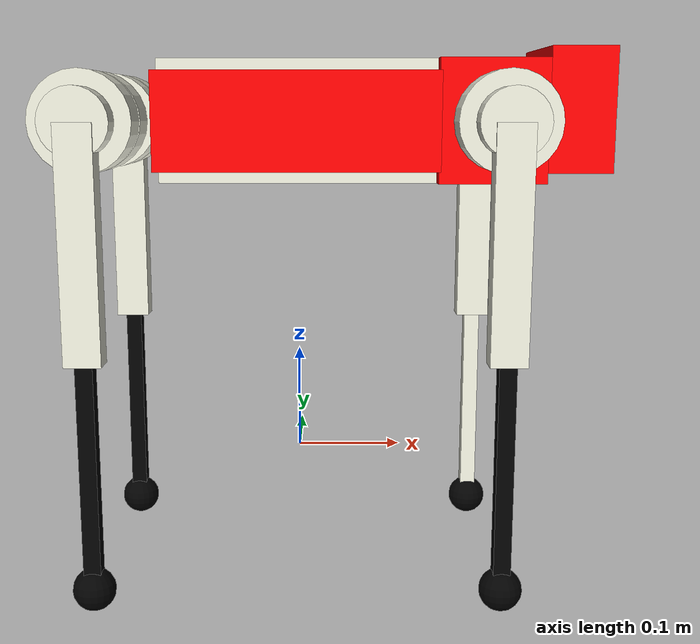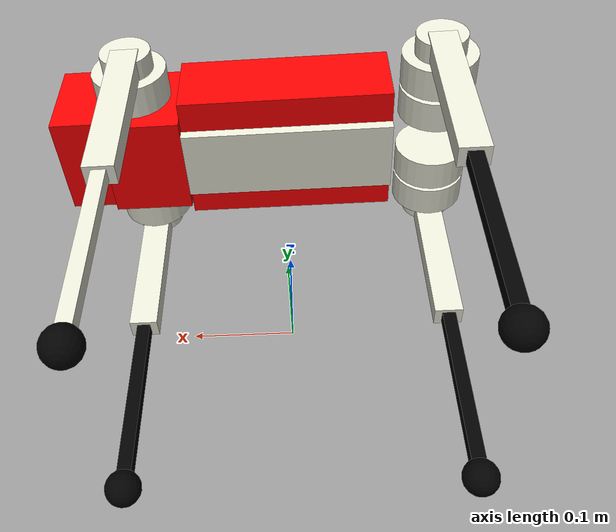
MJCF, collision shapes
<mujoco model="go1_description">
    <compiler angle="radian" meshdir="./meshes/" autolimits="true" />
    <size njmax="500" nconmax="100" />
    <option gravity='0 0 -9.806' iterations='50' solver='Newton' timestep='0.002'
            cone="elliptic" impratio="100"/>
    <default>
        <geom contype="1" conaffinity="1" friction="0.6 0.3 0.3" rgba="0.5 0.6 0.7 1" margin="0.001" group="0"/>

        <motor ctrlrange="-33.5 33.5" ctrllimited="true"/>
        <camera fovy="60"/>
        <joint damping="1.0" armature="0.01" frictionloss="0.2" />

        <default class="actuator_on_hip">
            <position kp="50" ctrlrange="-0.802851 0.802851" forcerange="-23.7 23.7" />
        </default>
        <default class="actuator_on_thigh">
            <position kp="50" ctrlrange="-1.0472 4.18879" forcerange="-23.7 23.7" />
        </default>
        <default class="actuator_on_calf">
            <position kp="50" ctrlrange="-2.69653 -0.916298" forcerange="-35.55 35.55" />
        </default>
        <default class="foot">
          <!-- the 3rd value of solimp is roughly proportional to the deformation
          of the foot when the robot stands on the ground. With this value (0.01)
          the deformation is about 0.44 cm -->
          <geom type="sphere" size="0.02" pos="0 0 -0.213" priority="1" solimp="0.015 1 0.01"
              condim="6" friction="0.8 0.02 0.01" rgba="0 0 0 1"/>
        </default>
    </default>
    <asset>
        <mesh name="trunk" file="trunk.stl" />
        <mesh name="hip" file="hip.stl" />
        <mesh name="thigh_mirror" file="thigh_mirror.stl" />
        <mesh name="calf" file="calf.stl" />
        <mesh name="thigh" file="thigh.stl" />
    </asset>

    <asset>
        <texture type="skybox" builtin="gradient" rgb1="1.0 1.0 1.0" rgb2="1.0 1.0 1.0" width="512" height="512"/>
        <texture name="plane" type="2d" builtin="flat" rgb1="1 1 1" rgb2="1 1 1" width="512" height="512" mark="cross" markrgb="0 0 0"/>
        <material name="plane" reflectance="0.0" texture="plane" texrepeat="3 3" texuniform="true"/>
    </asset>

    <worldbody>
        <body name="trunk" pos="0 0 0.325">
            <inertial pos="0.0116053 0.00442221 0.000106692" quat="0.0111438 0.707126 -0.00935374 0.706938" mass="4.801" diaginertia="0.0447997 0.0366257 0.0162187" />
            <freejoint/>
            <geom type="mesh" contype="0" conaffinity="0" group="1" rgba="0.913725 0.913725 0.847059 1" mesh="trunk" />
            <geom size="0.13 0.04675 0.057" type="box" rgba="0.913725 0.913725 0.847059 1" />
            <geom size="0.0005 0.0005 0.0005" pos="-0.01592 -0.06659 -0.00617" type="box" contype="0" conaffinity="0" group="1" rgba="0.8 0 0 0" />
            <geom size="0.0005 0.0005 0.0005" pos="-0.01592 -0.06659 -0.00617" type="box" rgba="0.8 0 0 0" />
            <geom size="0.13 0.08675 0.045" type="box" rgba="1 0 0 0"/>
            <geom size="0.05 0.06675 0.057" type="box" pos="0.18 0 0" rgba="1 0 0 0"/>
            <geom size="0.03 0.06675 0.057" type="box" pos="0.26 0 0.01" rgba="1 0 0 0"/>
            <site name="imu" pos="0 0 0"/>

            <body name="FR_hip" pos="0.1881 -0.04675 0">
                <inertial pos="-0.00406411 -0.0193463 4.50733e-06" quat="0.467526 0.531662 -0.466259 0.530431" mass="0.679292" diaginertia="0.00131334 0.00122648 0.000728484" />
                <joint name="FR_hip_joint" pos="0 0 0" axis="1 0 0" limited="true" range="-0.802851 0.802851" />
                <geom quat="0 1 0 0" type="mesh" contype="0" conaffinity="0" group="1" rgba="0.913725 0.913725 0.847059 1" mesh="hip" />
                <geom size="0.046 0.02" pos="0 -0.045 0" quat="0.707107 0.707107 0 0" type="cylinder" rgba="0.913725 0.913725 0.847059 0" />
                <geom size="0.031 0.02" pos="0 -0.07 0" quat="0.707107 0.707107 0 0" type="cylinder" rgba="0.913725 0.913725 0.847059 0" />

                <body name="FR_thigh" pos="0 -0.08 0">
                    <inertial pos="-0.003468 0.018947 -0.032736" quat="0.999266 0.00067676 -0.0382978 0.000639813" mass="0.898919" diaginertia="0.00542178 0.00514246 0.000998869" />
                    <joint name="FR_thigh_joint" pos="0 0 0" axis="0 1 0" limited="true" range="-1.0472 4.18879" />
                    <geom type="mesh" contype="0" conaffinity="0" group="1" rgba="0.913725 0.913725 0.847059 1" mesh="thigh_mirror" />
                    <geom size="0.1065 0.01225 0.017" pos="0 0 -0.1065" quat="0.707107 0 0.707107 0" type="box" rgba="0.913725 0.913725 0.847059 0" />
                    <body name="FR_calf" pos="0 0 -0.213">
                        <inertial pos="0.00455603 0.0009473 -0.147239" quat="0.762045 0.00970173 0.0180098 0.647201" mass="0.218015" diaginertia="0.00399678 0.00398122 3.99428e-05" />
                        <joint name="FR_calf_joint" pos="0 0 0" axis="0 1 0" limited="true" range="-2.69653 -0.916298" />
                        <geom type="mesh" contype="0" conaffinity="0" group="1" rgba="0 0 0 1" mesh="calf" />
                        <geom size="0.1065 0.008 0.008" pos="0 0 -0.1065" quat="0.707107 0 0.707107 0" type="box" rgba="0 0 0 0" />
                        <geom size="0.01" pos="0 0 -0.213" contype="0" conaffinity="0" group="1" rgba="0 0 0 1" />
                        <!-- pos should be omitted. However, Object.get_local_position() does not handle
                        the default value from class. So we need to set it here in order to pass some unittests -->
                        <geom class="foot" pos="0 0 -0.213" />
                    </body>
                </body>
            </body>
            <body name="FL_hip" pos="0.1881 0.04675 0">
                <inertial pos="-0.00406411 0.0193463 4.50733e-06" quat="0.531662 0.467526 -0.530431 0.466259" mass="0.679292" diaginertia="0.00131334 0.00122648 0.000728484" />
                <joint name="FL_hip_joint" pos="0 0 0" axis="1 0 0" limited="true" range="-0.802851 0.802851" />
                <geom type="mesh" contype="0" conaffinity="0" group="1" rgba="0.913725 0.913725 0.847059 1" mesh="hip" />
                <geom size="0.046 0.02" pos="0 0.045 0" quat="0.707107 0.707107 0 0" type="cylinder" rgba="0.913725 0.913725 0.847059 0" />
                <geom size="0.031 0.02" pos="0 0.07 0" quat="0.707107 0.707107 0 0" type="cylinder" rgba="0.913725 0.913725 0.847059 0" />

                <body name="FL_thigh" pos="0 0.08 0">
                    <inertial pos="-0.003468 -0.018947 -0.032736" quat="0.999266 -0.00067676 -0.0382978 -0.000639813" mass="0.898919" diaginertia="0.00542178 0.00514246 0.000998869" />
                    <joint name="FL_thigh_joint" pos="0 0 0" axis="0 1 0" limited="true" range="-1.0472 4.18879" />
                    <geom type="mesh" contype="0" conaffinity="0" group="1" rgba="0.913725 0.913725 0.847059 1" mesh="thigh" />
                    <geom size="0.1065 0.01225 0.017" pos="0 0 -0.1065" quat="0.707107 0 0.707107 0" type="box" rgba="0.913725 0.913725 0.847059 0" />
                    <body name="FL_calf" pos="0 0 -0.213">
                        <inertial pos="0.00455603 0.0009473 -0.147239" quat="0.762045 0.00970173 0.0180098 0.647201" mass="0.218015" diaginertia="0.00399678 0.00398122 3.99428e-05" />
                        <joint name="FL_calf_joint" pos="0 0 0" axis="0 1 0" limited="true" range="-2.69653 -0.916298" />
                        <geom type="mesh" contype="0" conaffinity="0" group="1" rgba="0 0 0 1" mesh="calf" />
                        <geom size="0.1065 0.008 0.008" pos="0 0 -0.1065" quat="0.707107 0 0.707107 0" type="box" rgba="0.913725 0.913725 0.847059 0" />
                        <geom size="0.01" pos="0 0 -0.213" contype="0" conaffinity="0" group="1" rgba="0 0 0 1" />
                        <geom class="foot" pos="0 0 -0.213" />
                    </body>
                </body>
            </body>
            <body name="RR_hip" pos="-0.1881 -0.04675 0">
                <inertial pos="0.00406411 -0.0193463 4.50733e-06" quat="0.530431 0.466259 -0.531662 0.467526" mass="0.679292" diaginertia="0.00131334 0.00122648 0.000728484" />
                <joint name="RR_hip_joint" pos="0 0 0" axis="1 0 0" limited="true" range="-0.802851 0.802851" />
                <geom quat="0 0 0 -1" type="mesh" contype="0" conaffinity="0" group="1" rgba="0.913725 0.913725 0.847059 1" mesh="hip" />
                <geom size="0.046 0.02" quat="0.707107 0.707107 0 0" type="cylinder" rgba="0.913725 0.913725 0.847059 1" />
                <geom size="0.046 0.02" pos="0 -0.045 0" quat="0.707107 0.707107 0 0" type="cylinder" rgba="0.913725 0.913725 0.847059 0" />
                <geom size="0.031 0.02" pos="0 -0.07 0" quat="0.707107 0.707107 0 0" type="cylinder" rgba="0.913725 0.913725 0.847059 0" />

                <body name="RR_thigh" pos="0 -0.08 0">
                    <inertial pos="-0.003468 0.018947 -0.032736" quat="0.999266 0.00067676 -0.0382978 0.000639813" mass="0.898919" diaginertia="0.00542178 0.00514246 0.000998869" />
                    <joint name="RR_thigh_joint" pos="0 0 0" axis="0 1 0" limited="true" range="-1.0472 4.18879" />
                    <geom type="mesh" contype="0" conaffinity="0" group="1" rgba="0.913725 0.913725 0.847059 1" mesh="thigh_mirror" />
                    <geom size="0.1065 0.01225 0.017" pos="0 0 -0.1065" quat="0.707107 0 0.707107 0" type="box" rgba="0.913725 0.913725 0.847059 0" />
                    <body name="RR_calf" pos="0 0 -0.213">
                        <inertial pos="0.00455603 0.0009473 -0.147239" quat="0.762045 0.00970173 0.0180098 0.647201" mass="0.218015" diaginertia="0.00399678 0.00398122 3.99428e-05" />
                        <joint name="RR_calf_joint" pos="0 0 0" axis="0 1 0" limited="true" range="-2.69653 -0.916298" />
                        <geom type="mesh" contype="0" conaffinity="0" group="1" rgba="0 0 0 1" mesh="calf" />
                        <geom size="0.1065 0.008 0.008" pos="0 0 -0.1065" quat="0.707107 0 0.707107 0" type="box" rgba="0 0 0 0" />
                        <geom size="0.01" pos="0 0 -0.213" contype="0" conaffinity="0" group="1" rgba="0 0 0 1" />
                        <geom class="foot" pos="0 0 -0.213" />
                    </body>
                </body>
            </body>
            <body name="RL_hip" pos="-0.1881 0.04675 0">
                <inertial pos="0.00406411 0.0193463 4.50733e-06" quat="0.466259 0.530431 -0.467526 0.531662" mass="0.679292" diaginertia="0.00131334 0.00122648 0.000728484" />
                <joint name="RL_hip_joint" pos="0 0 0" axis="1 0 0" limited="true" range="-0.802851 0.802851"  />
                <geom quat="0 0 1 0" type="mesh" contype="0" conaffinity="0" group="1" rgba="0.913725 0.913725 0.847059 1" mesh="hip" />
                <geom size="0.046 0.02" quat="0.707107 0.707107 0 0" type="cylinder" rgba="0.913725 0.913725 0.847059 1" />
                <geom size="0.046 0.02" pos="0 0.045 0" quat="0.707107 0.707107 0 0" type="cylinder" rgba="0.913725 0.913725 0.847059 0" />
                <geom size="0.031 0.02" pos="0 0.07 0" quat="0.707107 0.707107 0 0" type="cylinder" rgba="0.913725 0.913725 0.847059 0" />

                <body name="RL_thigh" pos="0 0.08 0">
                    <inertial pos="-0.003468 -0.018947 -0.032736" quat="0.999266 -0.00067676 -0.0382978 -0.000639813" mass="0.898919" diaginertia="0.00542178 0.00514246 0.000998869" />
                    <joint name="RL_thigh_joint" pos="0 0 0" axis="0 1 0" limited="true" range="-1.0472 4.18879" />
                    <geom type="mesh" contype="0" conaffinity="0" group="1" rgba="0.913725 0.913725 0.847059 1" mesh="thigh" />
                    <geom size="0.1065 0.01225 0.017" pos="0 0 -0.1065" quat="0.707107 0 0.707107 0" type="box" rgba="0.913725 0.913725 0.847059 0" />
                    <body name="RL_calf" pos="0 0 -0.213">
                        <inertial pos="0.00455603 0.0009473 -0.147239" quat="0.762045 0.00970173 0.0180098 0.647201" mass="0.218015" diaginertia="0.00399678 0.00398122 3.99428e-05" />
                        <joint name="RL_calf_joint" pos="0 0 0" axis="0 1 0" limited="true" range="-2.69653 -0.916298" />
                        <geom type="mesh" contype="0" conaffinity="0" group="1" rgba="0 0 0 1" mesh="calf" />
                        <geom size="0.1065 0.008 0.008" pos="0 0 -0.1065" quat="0.707107 0 0.707107 0" type="box" rgba="0 0 0 0" />
                        <geom size="0.01" pos="0 0 -0.213" contype="0" conaffinity="0" group="1" rgba="0 0 0 1" />
                        <geom class="foot" pos="0 0 -0.213" />
                    </body>
                </body>
            </body>
        </body>
    </worldbody>
    <actuator>
        <position name="FR_hip_actuator" class="actuator_on_hip" joint="FR_hip_joint" />
        <position name="FR_thigh_actuator" class="actuator_on_thigh" joint="FR_thigh_joint" />
        <position name="FR_calf_actuator" class="actuator_on_calf" joint="FR_calf_joint" />

        <position name="FL_hip_actuator" class="actuator_on_hip" joint="FL_hip_joint" />
        <position name="FL_thigh_actuator" class="actuator_on_thigh" joint="FL_thigh_joint" />
        <position name="FL_calf_actuator" class="actuator_on_calf" joint="FL_calf_joint" />

        <position name="RR_hip_actuator" class="actuator_on_hip" joint="RR_hip_joint" />
        <position name="RR_thigh_actuator" class="actuator_on_thigh" joint="RR_thigh_joint" />
        <position name="RR_calf_actuator" class="actuator_on_calf" joint="RR_calf_joint" />

        <position name="RL_hip_actuator" class="actuator_on_hip" joint="RL_hip_joint" />
        <position name="RL_thigh_actuator" class="actuator_on_thigh" joint="RL_thigh_joint" />
        <position name="RL_calf_actuator" class="actuator_on_calf" joint="RL_calf_joint" />
    </actuator>

    <sensor>

        <jointpos name="FR_hip_pos"     joint="FR_hip_joint"/>
        <jointpos name="FR_thigh_pos"   joint="FR_thigh_joint"/>
        <jointpos name="FR_calf_pos"    joint="FR_calf_joint"/>
        <jointpos name="FL_hip_pos"     joint="FL_hip_joint"/>
        <jointpos name="FL_thigh_pos"   joint="FL_thigh_joint"/>
        <jointpos name="FL_calf_pos"    joint="FL_calf_joint"/>
        <jointpos name="RR_hip_pos"     joint="RR_hip_joint"/>
        <jointpos name="RR_thigh_pos"   joint="RR_thigh_joint"/>
        <jointpos name="RR_calf_pos"    joint="RR_calf_joint" />
        <jointpos name="RL_hip_pos"     joint="RL_hip_joint"/>
        <jointpos name="RL_thigh_pos"   joint="RL_thigh_joint"/>
        <jointpos name="RL_calf_pos"    joint="RL_calf_joint"/>

        <jointvel name="FR_hip_vel"     joint="FR_hip_joint"/>
        <jointvel name="FR_thigh_vel"   joint="FR_thigh_joint"/>
        <jointvel name="FR_calf_vel"    joint="FR_calf_joint"/>
        <jointvel name="FL_hip_vel"     joint="FL_hip_joint"/>
        <jointvel name="FL_thigh_vel"   joint="FL_thigh_joint"/>
        <jointvel name="FL_calf_vel"    joint="FL_calf_joint"/>
        <jointvel name="RR_hip_vel"     joint="RR_hip_joint"/>
        <jointvel name="RR_thigh_vel"   joint="RR_thigh_joint"/>
        <jointvel name="RR_calf_vel"    joint="RR_calf_joint" />
        <jointvel name="RL_hip_vel"     joint="RL_hip_joint"/>
        <jointvel name="RL_thigh_vel"   joint="RL_thigh_joint"/>
        <jointvel name="RL_calf_vel"    joint="RL_calf_joint"/>

        <accelerometer name="Body_Acc" site="imu"/>

        <gyro name="Body_Gyro" site="imu"/>

        <framepos name="Body_Pos" objtype="site" objname="imu"/>

        <framequat name="Body_Quat" objtype="site" objname="imu"/>

        <actuatorfrc name="FR_hip_tau"     actuator="FR_hip_actuator"/>
        <actuatorfrc name="FR_thigh_tau"   actuator="FR_thigh_actuator"/>
        <actuatorfrc name="FR_calf_tau"    actuator="FR_calf_actuator"/>
        <actuatorfrc name="FL_hip_tau"     actuator="FL_hip_actuator"/>
        <actuatorfrc name="FL_thigh_tau"   actuator="FL_thigh_actuator"/>
        <actuatorfrc name="FL_calf_tau"    actuator="FL_calf_actuator"/>
        <actuatorfrc name="RR_hip_tau"     actuator="RR_hip_actuator"/>
        <actuatorfrc name="RR_thigh_tau"   actuator="RR_thigh_actuator"/>
        <actuatorfrc name="RR_calf_tau"    actuator="RR_calf_actuator" />
        <actuatorfrc name="RL_hip_tau"     actuator="RL_hip_actuator"/>
        <actuatorfrc name="RL_thigh_tau"   actuator="RL_thigh_actuator"/>
        <actuatorfrc name="RL_calf_tau"    actuator="RL_calf_actuator"/>
    </sensor>

    <keyframe>
        <key name="home"
             qpos="0 0 0.27 1 0 0 0 0 0.9 -1.8 0 0.9 -1.8 0 0.9 -1.8 0 0.9 -1.8"
             ctrl="0 0.9 -1.8 0 0.9 -1.8 0 0.9 -1.8 0 0.9 -1.8"/>
    </keyframe>
</mujoco>
